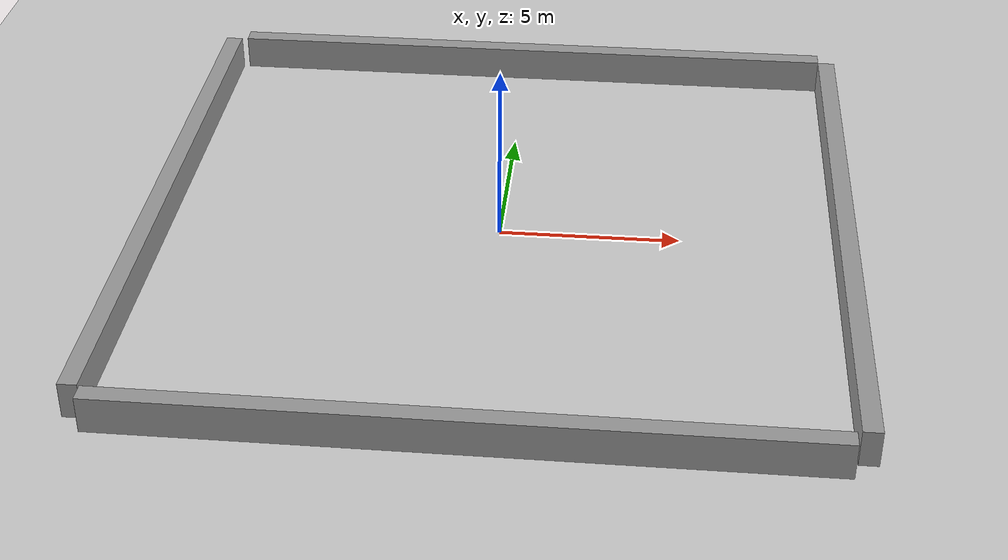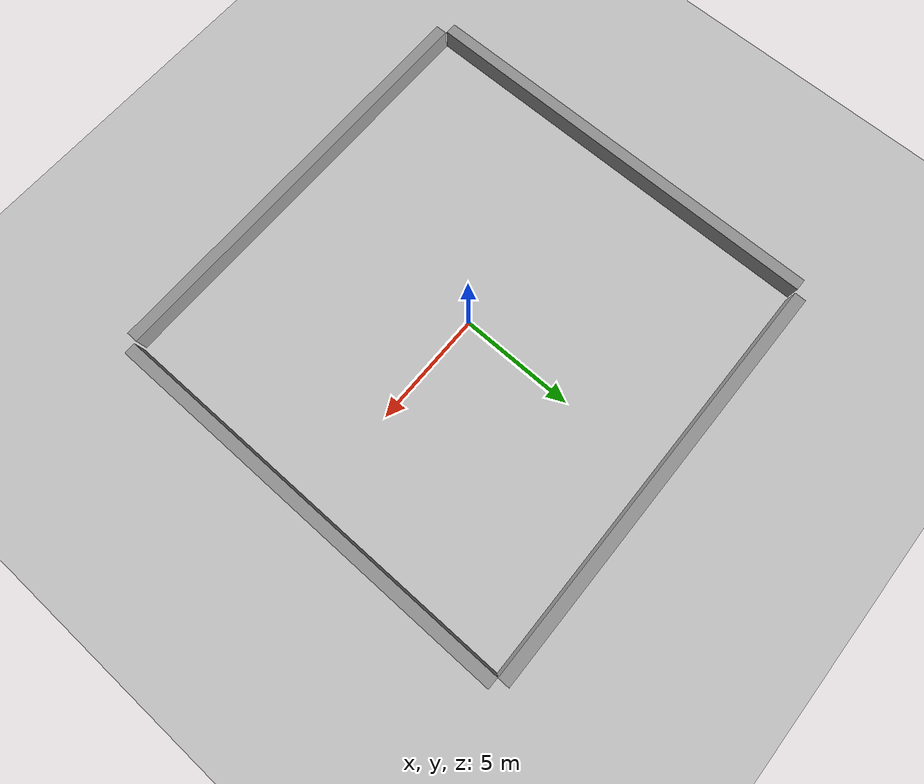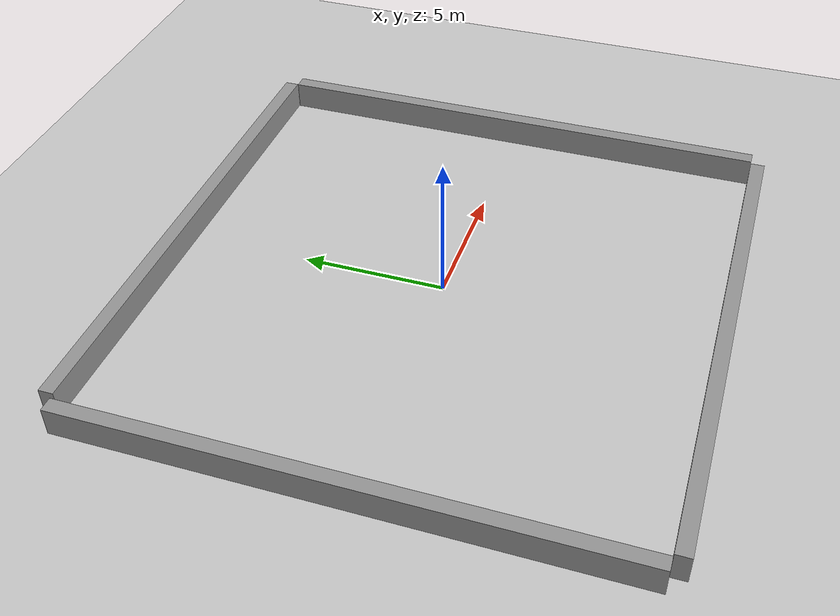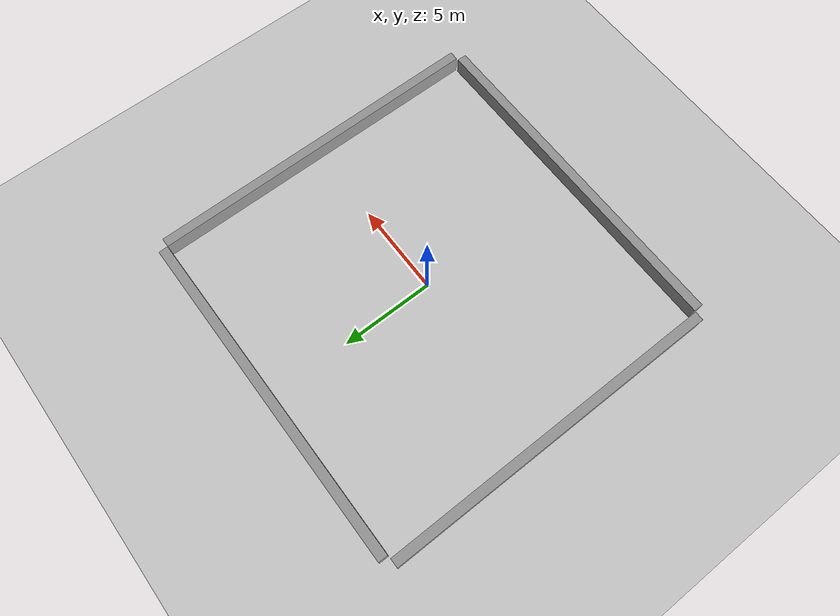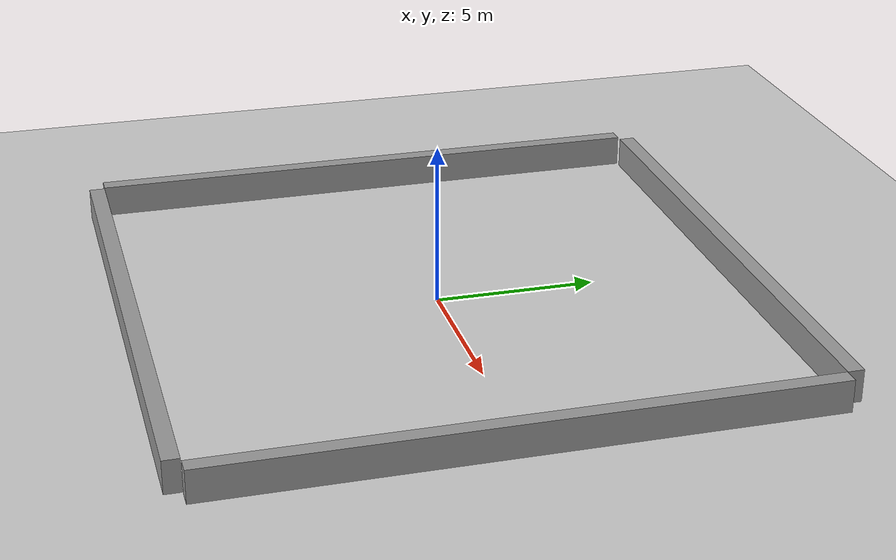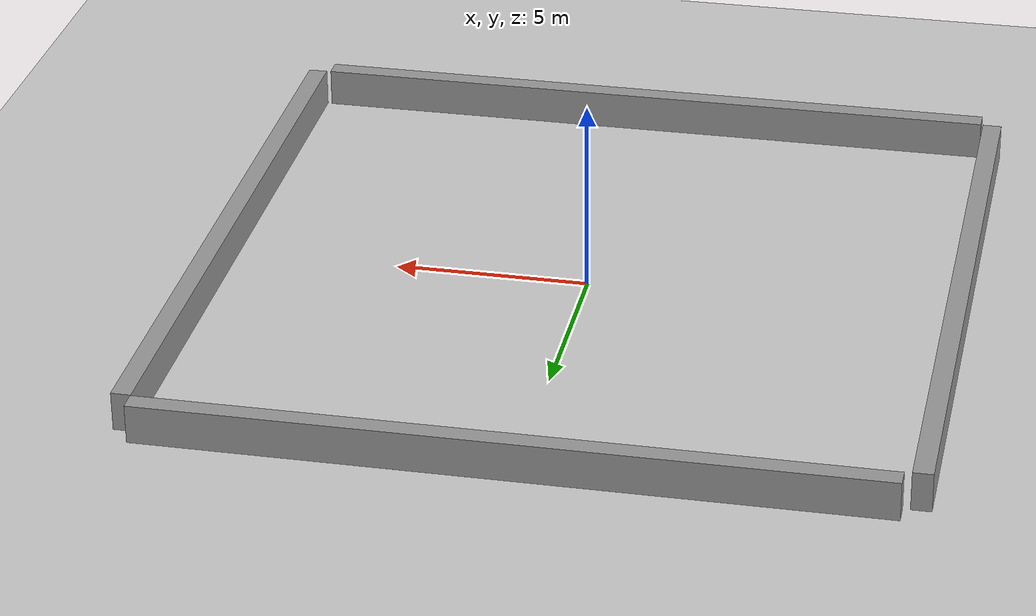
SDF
<sdf version="1.6">
 <world name="racecar_tunnel">
  <model name="ground_plane">
   <static>1</static>
   <link name="link">
    <collision name="collision">
     <geometry><plane><normal>0 0 1</normal><size>150 150</size></plane></geometry>
     <surface><friction><ode><mu>100</mu><mu2>50</mu2></ode></friction></surface>
    </collision>
    <visual name="visual">
     <cast_shadows>0</cast_shadows>
     <geometry><plane><normal>0 0 1</normal><size>150 150</size></plane></geometry>
     <material>
      <script><uri>file://media/materials/scripts/gazebo.material</uri><name>Gazebo/Grey</name></script>
     </material>
    </visual>
   </link>
  </model>
  <gravity>0 0 -9.8</gravity>
  <magnetic_field>6e-06 2.3e-05 -4.2e-05</magnetic_field>
  <atmosphere type="adiabatic"/>
  <physics name="default_physics" default="0" type="ode">
   <max_step_size>0.001</max_step_size>
   <real_time_factor>1</real_time_factor>
   <real_time_update_rate>1000</real_time_update_rate>
  </physics>
  <scene><ambient>0.4 0.4 0.4 1</ambient><background>0.7 0.7 0.7 1</background><shadows>0</shadows></scene>
  <spherical_coordinates>
   <surface_model>EARTH_WGS84</surface_model>
   <latitude_deg>0</latitude_deg>
   <longitude_deg>0</longitude_deg>
   <elevation>0</elevation>
   <heading_deg>0</heading_deg>
  </spherical_coordinates>
  <model name="unit_box_0_1">
   <static>1</static>
   <pose>9.48775 0.015624 0.5 0 -0 0</pose>
   <link name="link">
    <collision name="collision"><geometry><box><size>0.5 18.3426 1</size></box></geometry></collision>
    <visual name="visual">
     <geometry><box><size>0.5 18.3426 1</size></box></geometry>
     <material>
      <script><name>Gazebo/Grey</name><uri>file://media/materials/scripts/gazebo.material</uri></script>
     </material>
    </visual>
   </link>
  </model>
  <model name="unit_box_0_2">
   <static>1</static>
   <pose>-9.52417 0.018557 0.5 0 -0 0</pose>
   <link name="link">
    <collision name="collision"><geometry><box><size>0.5 18.3426 1</size></box></geometry></collision>
    <visual name="visual">
     <geometry><box><size>0.5 18.3426 1</size></box></geometry>
     <material>
      <script><name>Gazebo/Grey</name><uri>file://media/materials/scripts/gazebo.material</uri></script>
     </material>
    </visual>
   </link>
  </model>
  <model name="unit_box_0_3">
   <static>1</static>
   <pose>0.072693 9.45237 0.5 0 -0 0</pose>
   <link name="link">
    <collision name="collision"><geometry><box><size>18.3426 0.5 1</size></box></geometry></collision>
    <visual name="visual">
     <geometry><box><size>18.3426 0.5 1</size></box></geometry>
     <material>
      <script><name>Gazebo/Grey</name><uri>file://media/materials/scripts/gazebo.material</uri></script>
     </material>
    </visual>
   </link>
  </model>
  <model name="unit_box_0_3_clone">
   <static>1</static>
   <pose>-0.042203 -9.41155 0.5 0 -0 0</pose>
   <link name="link">
    <collision name="collision"><geometry><box><size>18.3426 0.5 1</size></box></geometry></collision>
    <visual name="visual">
     <geometry><box><size>18.3426 0.5 1</size></box></geometry>
     <material>
      <script><name>Gazebo/Grey</name><uri>file://media/materials/scripts/gazebo.material</uri></script>
     </material>
    </visual>
   </link>
  </model>
 </world>
</sdf>
